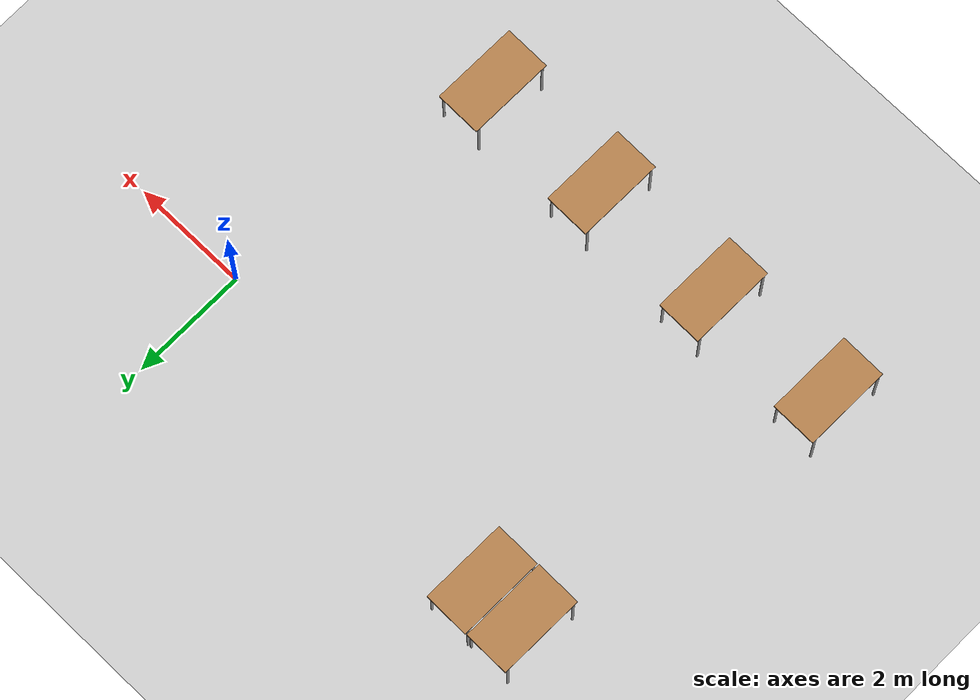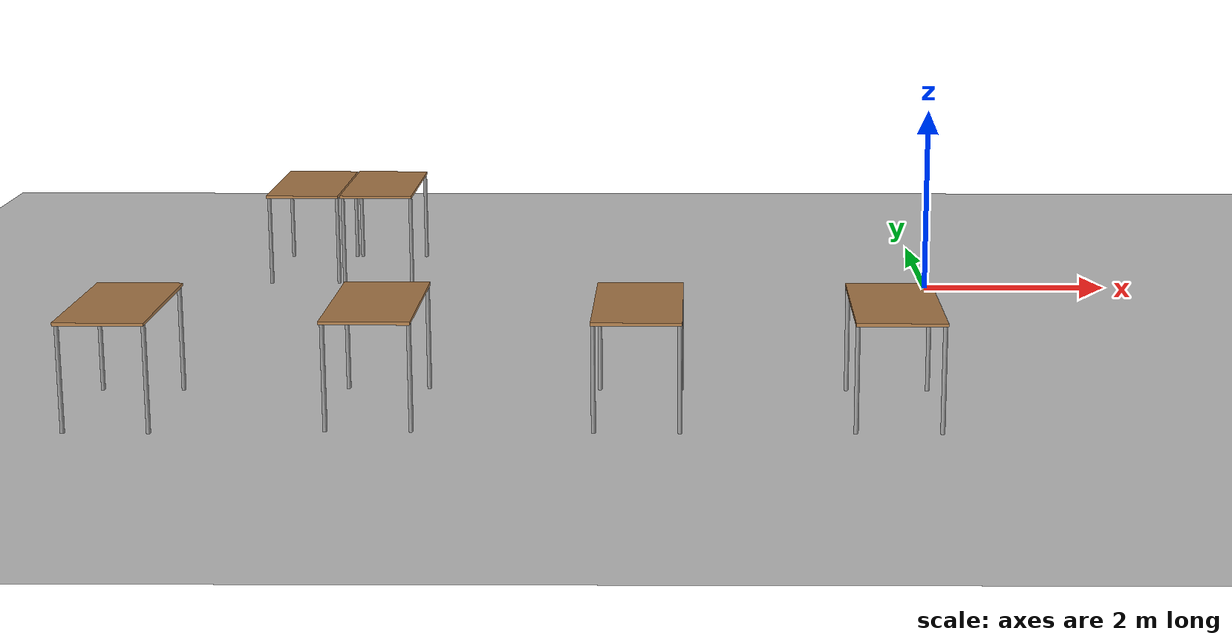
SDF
<sdf version="1.6">
 <world name="default">
  <model name="ground_plane">
   <static>1</static>
   <link name="link">
    <collision name="collision">
     <geometry><plane><normal>0 0 1</normal><size>100 100</size></plane></geometry>
     <surface><friction><ode><mu>100</mu><mu2>50</mu2></ode></friction></surface>
    </collision>
    <visual name="visual">
     <cast_shadows>0</cast_shadows>
     <geometry><plane><normal>0 0 1</normal><size>100 100</size></plane></geometry>
     <material>
      <script><uri>file://media/materials/scripts/gazebo.material</uri><name>Gazebo/Grey</name></script>
     </material>
    </visual>
   </link>
  </model>
  <model name="table">
   <static>1</static>
   <link name="link">
    <collision name="surface">
     <pose>0 0 1 0 -0 0</pose>
     <geometry><box><size>1.5 0.8 0.03</size></box></geometry>
     <surface><friction><ode><mu>0.6</mu><mu2>0.6</mu2></ode></friction></surface>
    </collision>
    <visual name="visual1">
     <pose>0 0 1 0 -0 0</pose>
     <geometry><box><size>1.5 0.8 0.03</size></box></geometry>
     <material>
      <script><uri>file://media/materials/scripts/gazebo.material</uri><name>Gazebo/Wood</name></script>
     </material>
    </visual>
    <collision name="front_left_leg">
     <pose>0.68 0.38 0.5 0 -0 0</pose>
     <geometry><cylinder><radius>0.02</radius><length>1</length></cylinder></geometry>
    </collision>
    <visual name="front_left_leg">
     <pose>0.68 0.38 0.5 0 -0 0</pose>
     <geometry><cylinder><radius>0.02</radius><length>1</length></cylinder></geometry>
     <material>
      <script><uri>file://media/materials/scripts/gazebo.material</uri><name>Gazebo/Grey</name></script>
     </material>
    </visual>
    <collision name="front_right_leg">
     <pose>0.68 -0.38 0.5 0 -0 0</pose>
     <geometry><cylinder><radius>0.02</radius><length>1</length></cylinder></geometry>
    </collision>
    <visual name="front_right_leg">
     <pose>0.68 -0.38 0.5 0 -0 0</pose>
     <geometry><cylinder><radius>0.02</radius><length>1</length></cylinder></geometry>
     <material>
      <script><uri>file://media/materials/scripts/gazebo.material</uri><name>Gazebo/Grey</name></script>
     </material>
    </visual>
    <collision name="back_right_leg">
     <pose>-0.68 -0.38 0.5 0 -0 0</pose>
     <geometry><cylinder><radius>0.02</radius><length>1</length></cylinder></geometry>
    </collision>
    <visual name="back_right_leg">
     <pose>-0.68 -0.38 0.5 0 -0 0</pose>
     <geometry><cylinder><radius>0.02</radius><length>1</length></cylinder></geometry>
     <material>
      <script><uri>file://media/materials/scripts/gazebo.material</uri><name>Gazebo/Grey</name></script>
     </material>
    </visual>
    <collision name="back_left_leg">
     <pose>-0.68 0.38 0.5 0 -0 0</pose>
     <geometry><cylinder><radius>0.02</radius><length>1</length></cylinder></geometry>
    </collision>
    <visual name="back_left_leg">
     <pose>-0.68 0.38 0.5 0 -0 0</pose>
     <geometry><cylinder><radius>0.02</radius><length>1</length></cylinder></geometry>
     <material>
      <script><uri>file://media/materials/scripts/gazebo.material</uri><name>Gazebo/Grey</name></script>
     </material>
    </visual>
   </link>
   <pose>-0.809129 -4.7649 0 0 0 -1.5819</pose>
  </model>
  <model name="table_clone">
   <static>1</static>
   <link name="link">
    <collision name="surface">
     <pose>0 0 1 0 -0 0</pose>
     <geometry><box><size>1.5 0.8 0.03</size></box></geometry>
     <surface><friction><ode><mu>0.6</mu><mu2>0.6</mu2></ode></friction></surface>
    </collision>
    <visual name="visual1">
     <pose>0 0 1 0 -0 0</pose>
     <geometry><box><size>1.5 0.8 0.03</size></box></geometry>
     <material>
      <script><uri>file://media/materials/scripts/gazebo.material</uri><name>Gazebo/Wood</name></script>
     </material>
    </visual>
    <collision name="front_left_leg">
     <pose>0.68 0.38 0.5 0 -0 0</pose>
     <geometry><cylinder><radius>0.02</radius><length>1</length></cylinder></geometry>
    </collision>
    <visual name="front_left_leg">
     <pose>0.68 0.38 0.5 0 -0 0</pose>
     <geometry><cylinder><radius>0.02</radius><length>1</length></cylinder></geometry>
     <material>
      <script><uri>file://media/materials/scripts/gazebo.material</uri><name>Gazebo/Grey</name></script>
     </material>
    </visual>
    <collision name="front_right_leg">
     <pose>0.68 -0.38 0.5 0 -0 0</pose>
     <geometry><cylinder><radius>0.02</radius><length>1</length></cylinder></geometry>
    </collision>
    <visual name="front_right_leg">
     <pose>0.68 -0.38 0.5 0 -0 0</pose>
     <geometry><cylinder><radius>0.02</radius><length>1</length></cylinder></geometry>
     <material>
      <script><uri>file://media/materials/scripts/gazebo.material</uri><name>Gazebo/Grey</name></script>
     </material>
    </visual>
    <collision name="back_right_leg">
     <pose>-0.68 -0.38 0.5 0 -0 0</pose>
     <geometry><cylinder><radius>0.02</radius><length>1</length></cylinder></geometry>
    </collision>
    <visual name="back_right_leg">
     <pose>-0.68 -0.38 0.5 0 -0 0</pose>
     <geometry><cylinder><radius>0.02</radius><length>1</length></cylinder></geometry>
     <material>
      <script><uri>file://media/materials/scripts/gazebo.material</uri><name>Gazebo/Grey</name></script>
     </material>
    </visual>
    <collision name="back_left_leg">
     <pose>-0.68 0.38 0.5 0 -0 0</pose>
     <geometry><cylinder><radius>0.02</radius><length>1</length></cylinder></geometry>
    </collision>
    <visual name="back_left_leg">
     <pose>-0.68 0.38 0.5 0 -0 0</pose>
     <geometry><cylinder><radius>0.02</radius><length>1</length></cylinder></geometry>
     <material>
      <script><uri>file://media/materials/scripts/gazebo.material</uri><name>Gazebo/Grey</name></script>
     </material>
    </visual>
   </link>
   <pose>-3.11524 -4.75464 0 0 0 -1.5819</pose>
  </model>
  <model name="table_clone_0">
   <static>1</static>
   <link name="link">
    <collision name="surface">
     <pose>0 0 1 0 -0 0</pose>
     <geometry><box><size>1.5 0.8 0.03</size></box></geometry>
     <surface><friction><ode><mu>0.6</mu><mu2>0.6</mu2></ode></friction></surface>
    </collision>
    <visual name="visual1">
     <pose>0 0 1 0 -0 0</pose>
     <geometry><box><size>1.5 0.8 0.03</size></box></geometry>
     <material>
      <script><uri>file://media/materials/scripts/gazebo.material</uri><name>Gazebo/Wood</name></script>
     </material>
    </visual>
    <collision name="front_left_leg">
     <pose>0.68 0.38 0.5 0 -0 0</pose>
     <geometry><cylinder><radius>0.02</radius><length>1</length></cylinder></geometry>
    </collision>
    <visual name="front_left_leg">
     <pose>0.68 0.38 0.5 0 -0 0</pose>
     <geometry><cylinder><radius>0.02</radius><length>1</length></cylinder></geometry>
     <material>
      <script><uri>file://media/materials/scripts/gazebo.material</uri><name>Gazebo/Grey</name></script>
     </material>
    </visual>
    <collision name="front_right_leg">
     <pose>0.68 -0.38 0.5 0 -0 0</pose>
     <geometry><cylinder><radius>0.02</radius><length>1</length></cylinder></geometry>
    </collision>
    <visual name="front_right_leg">
     <pose>0.68 -0.38 0.5 0 -0 0</pose>
     <geometry><cylinder><radius>0.02</radius><length>1</length></cylinder></geometry>
     <material>
      <script><uri>file://media/materials/scripts/gazebo.material</uri><name>Gazebo/Grey</name></script>
     </material>
    </visual>
    <collision name="back_right_leg">
     <pose>-0.68 -0.38 0.5 0 -0 0</pose>
     <geometry><cylinder><radius>0.02</radius><length>1</length></cylinder></geometry>
    </collision>
    <visual name="back_right_leg">
     <pose>-0.68 -0.38 0.5 0 -0 0</pose>
     <geometry><cylinder><radius>0.02</radius><length>1</length></cylinder></geometry>
     <material>
      <script><uri>file://media/materials/scripts/gazebo.material</uri><name>Gazebo/Grey</name></script>
     </material>
    </visual>
    <collision name="back_left_leg">
     <pose>-0.68 0.38 0.5 0 -0 0</pose>
     <geometry><cylinder><radius>0.02</radius><length>1</length></cylinder></geometry>
    </collision>
    <visual name="back_left_leg">
     <pose>-0.68 0.38 0.5 0 -0 0</pose>
     <geometry><cylinder><radius>0.02</radius><length>1</length></cylinder></geometry>
     <material>
      <script><uri>file://media/materials/scripts/gazebo.material</uri><name>Gazebo/Grey</name></script>
     </material>
    </visual>
   </link>
   <pose>-5.48047 -4.72165 0 0 0 -1.5819</pose>
  </model>
  <model name="table_clone_1">
   <static>1</static>
   <link name="link">
    <collision name="surface">
     <pose>0 0 1 0 -0 0</pose>
     <geometry><box><size>1.5 0.8 0.03</size></box></geometry>
     <surface><friction><ode><mu>0.6</mu><mu2>0.6</mu2></ode></friction></surface>
    </collision>
    <visual name="visual1">
     <pose>0 0 1 0 -0 0</pose>
     <geometry><box><size>1.5 0.8 0.03</size></box></geometry>
     <material>
      <script><uri>file://media/materials/scripts/gazebo.material</uri><name>Gazebo/Wood</name></script>
     </material>
    </visual>
    <collision name="front_left_leg">
     <pose>0.68 0.38 0.5 0 -0 0</pose>
     <geometry><cylinder><radius>0.02</radius><length>1</length></cylinder></geometry>
    </collision>
    <visual name="front_left_leg">
     <pose>0.68 0.38 0.5 0 -0 0</pose>
     <geometry><cylinder><radius>0.02</radius><length>1</length></cylinder></geometry>
     <material>
      <script><uri>file://media/materials/scripts/gazebo.material</uri><name>Gazebo/Grey</name></script>
     </material>
    </visual>
    <collision name="front_right_leg">
     <pose>0.68 -0.38 0.5 0 -0 0</pose>
     <geometry><cylinder><radius>0.02</radius><length>1</length></cylinder></geometry>
    </collision>
    <visual name="front_right_leg">
     <pose>0.68 -0.38 0.5 0 -0 0</pose>
     <geometry><cylinder><radius>0.02</radius><length>1</length></cylinder></geometry>
     <material>
      <script><uri>file://media/materials/scripts/gazebo.material</uri><name>Gazebo/Grey</name></script>
     </material>
    </visual>
    <collision name="back_right_leg">
     <pose>-0.68 -0.38 0.5 0 -0 0</pose>
     <geometry><cylinder><radius>0.02</radius><length>1</length></cylinder></geometry>
    </collision>
    <visual name="back_right_leg">
     <pose>-0.68 -0.38 0.5 0 -0 0</pose>
     <geometry><cylinder><radius>0.02</radius><length>1</length></cylinder></geometry>
     <material>
      <script><uri>file://media/materials/scripts/gazebo.material</uri><name>Gazebo/Grey</name></script>
     </material>
    </visual>
    <collision name="back_left_leg">
     <pose>-0.68 0.38 0.5 0 -0 0</pose>
     <geometry><cylinder><radius>0.02</radius><length>1</length></cylinder></geometry>
    </collision>
    <visual name="back_left_leg">
     <pose>-0.68 0.38 0.5 0 -0 0</pose>
     <geometry><cylinder><radius>0.02</radius><length>1</length></cylinder></geometry>
     <material>
      <script><uri>file://media/materials/scripts/gazebo.material</uri><name>Gazebo/Grey</name></script>
     </material>
    </visual>
   </link>
   <pose>-7.78154 -4.78034 0 0 0 -1.5819</pose>
  </model>
  <model name="table_clone_2">
   <static>1</static>
   <link name="link">
    <collision name="surface">
     <pose>0 0 1 0 -0 0</pose>
     <geometry><box><size>1.5 0.8 0.03</size></box></geometry>
     <surface><friction><ode><mu>0.6</mu><mu2>0.6</mu2></ode></friction></surface>
    </collision>
    <visual name="visual1">
     <pose>0 0 1 0 -0 0</pose>
     <geometry><box><size>1.5 0.8 0.03</size></box></geometry>
     <material>
      <script><uri>file://media/materials/scripts/gazebo.material</uri><name>Gazebo/Wood</name></script>
     </material>
    </visual>
    <collision name="front_left_leg">
     <pose>0.68 0.38 0.5 0 -0 0</pose>
     <geometry><cylinder><radius>0.02</radius><length>1</length></cylinder></geometry>
    </collision>
    <visual name="front_left_leg">
     <pose>0.68 0.38 0.5 0 -0 0</pose>
     <geometry><cylinder><radius>0.02</radius><length>1</length></cylinder></geometry>
     <material>
      <script><uri>file://media/materials/scripts/gazebo.material</uri><name>Gazebo/Grey</name></script>
     </material>
    </visual>
    <collision name="front_right_leg">
     <pose>0.68 -0.38 0.5 0 -0 0</pose>
     <geometry><cylinder><radius>0.02</radius><length>1</length></cylinder></geometry>
    </collision>
    <visual name="front_right_leg">
     <pose>0.68 -0.38 0.5 0 -0 0</pose>
     <geometry><cylinder><radius>0.02</radius><length>1</length></cylinder></geometry>
     <material>
      <script><uri>file://media/materials/scripts/gazebo.material</uri><name>Gazebo/Grey</name></script>
     </material>
    </visual>
    <collision name="back_right_leg">
     <pose>-0.68 -0.38 0.5 0 -0 0</pose>
     <geometry><cylinder><radius>0.02</radius><length>1</length></cylinder></geometry>
    </collision>
    <visual name="back_right_leg">
     <pose>-0.68 -0.38 0.5 0 -0 0</pose>
     <geometry><cylinder><radius>0.02</radius><length>1</length></cylinder></geometry>
     <material>
      <script><uri>file://media/materials/scripts/gazebo.material</uri><name>Gazebo/Grey</name></script>
     </material>
    </visual>
    <collision name="back_left_leg">
     <pose>-0.68 0.38 0.5 0 -0 0</pose>
     <geometry><cylinder><radius>0.02</radius><length>1</length></cylinder></geometry>
    </collision>
    <visual name="back_left_leg">
     <pose>-0.68 0.38 0.5 0 -0 0</pose>
     <geometry><cylinder><radius>0.02</radius><length>1</length></cylinder></geometry>
     <material>
      <script><uri>file://media/materials/scripts/gazebo.material</uri><name>Gazebo/Grey</name></script>
     </material>
    </visual>
   </link>
   <pose>-6.12754 0.884513 0 0 0 -1.5819</pose>
  </model>
  <model name="table_clone_3">
   <static>1</static>
   <link name="link">
    <collision name="surface">
     <pose>0 0 1 0 -0 0</pose>
     <geometry><box><size>1.5 0.8 0.03</size></box></geometry>
     <surface><friction><ode><mu>0.6</mu><mu2>0.6</mu2></ode></friction></surface>
    </collision>
    <visual name="visual1">
     <pose>0 0 1 0 -0 0</pose>
     <geometry><box><size>1.5 0.8 0.03</size></box></geometry>
     <material>
      <script><uri>file://media/materials/scripts/gazebo.material</uri><name>Gazebo/Wood</name></script>
     </material>
    </visual>
    <collision name="front_left_leg">
     <pose>0.68 0.38 0.5 0 -0 0</pose>
     <geometry><cylinder><radius>0.02</radius><length>1</length></cylinder></geometry>
    </collision>
    <visual name="front_left_leg">
     <pose>0.68 0.38 0.5 0 -0 0</pose>
     <geometry><cylinder><radius>0.02</radius><length>1</length></cylinder></geometry>
     <material>
      <script><uri>file://media/materials/scripts/gazebo.material</uri><name>Gazebo/Grey</name></script>
     </material>
    </visual>
    <collision name="front_right_leg">
     <pose>0.68 -0.38 0.5 0 -0 0</pose>
     <geometry><cylinder><radius>0.02</radius><length>1</length></cylinder></geometry>
    </collision>
    <visual name="front_right_leg">
     <pose>0.68 -0.38 0.5 0 -0 0</pose>
     <geometry><cylinder><radius>0.02</radius><length>1</length></cylinder></geometry>
     <material>
      <script><uri>file://media/materials/scripts/gazebo.material</uri><name>Gazebo/Grey</name></script>
     </material>
    </visual>
    <collision name="back_right_leg">
     <pose>-0.68 -0.38 0.5 0 -0 0</pose>
     <geometry><cylinder><radius>0.02</radius><length>1</length></cylinder></geometry>
    </collision>
    <visual name="back_right_leg">
     <pose>-0.68 -0.38 0.5 0 -0 0</pose>
     <geometry><cylinder><radius>0.02</radius><length>1</length></cylinder></geometry>
     <material>
      <script><uri>file://media/materials/scripts/gazebo.material</uri><name>Gazebo/Grey</name></script>
     </material>
    </visual>
    <collision name="back_left_leg">
     <pose>-0.68 0.38 0.5 0 -0 0</pose>
     <geometry><cylinder><radius>0.02</radius><length>1</length></cylinder></geometry>
    </collision>
    <visual name="back_left_leg">
     <pose>-0.68 0.38 0.5 0 -0 0</pose>
     <geometry><cylinder><radius>0.02</radius><length>1</length></cylinder></geometry>
     <material>
      <script><uri>file://media/materials/scripts/gazebo.material</uri><name>Gazebo/Grey</name></script>
     </material>
    </visual>
   </link>
   <pose>-6.94969 0.884513 0 0 0 -1.5819</pose>
  </model>
 </world>
</sdf>
